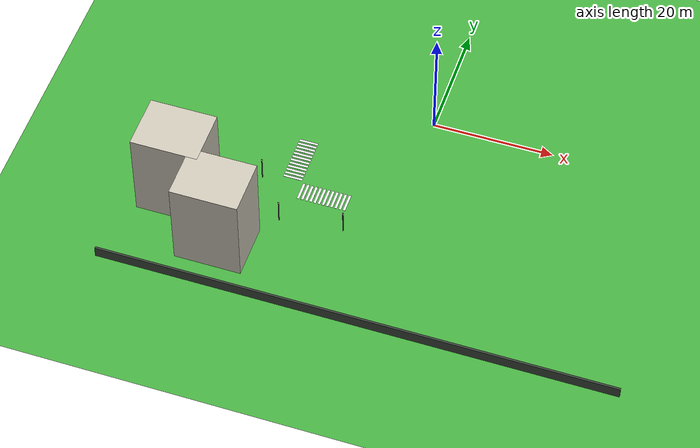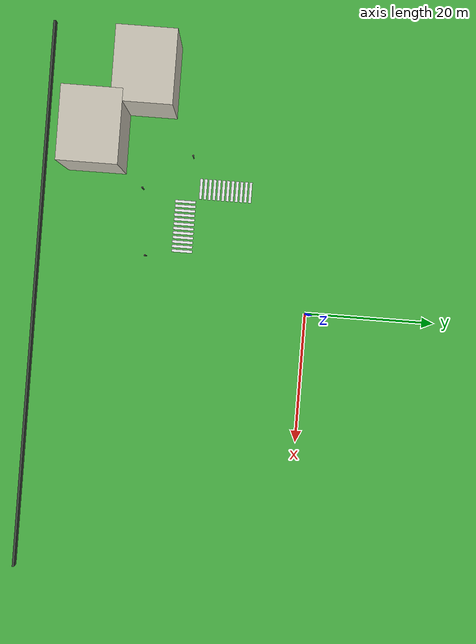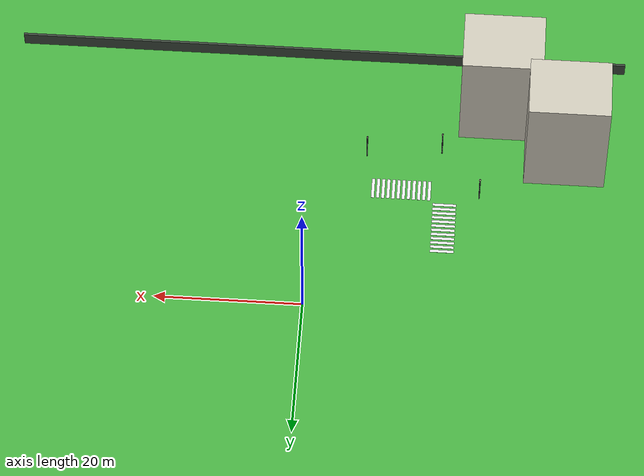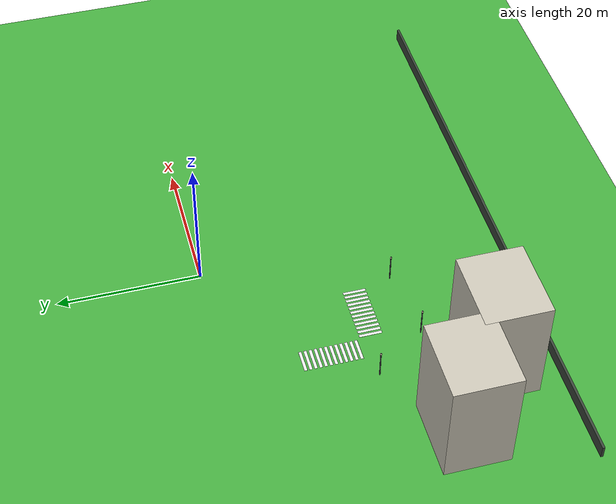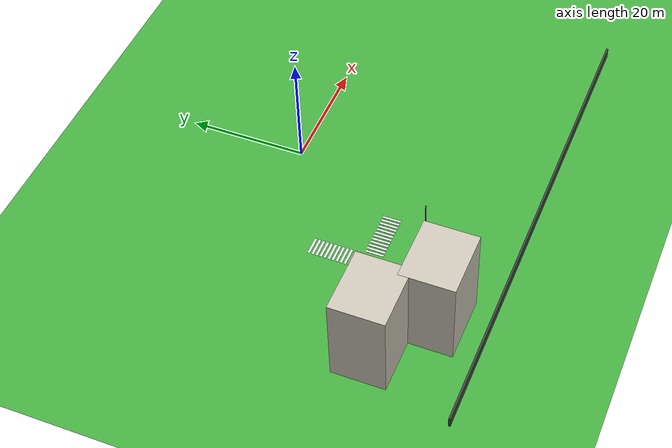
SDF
<sdf version="1.10">
 <world name="city_second">
  <model name="ground_plane">
   <static>true</static>
   <link name="link">
    <collision name="collision">
     <geometry><plane><normal>0 0 1</normal><size>300 300</size></plane></geometry>
    </collision>
    <visual name="visual">
     <geometry><plane><normal>0 0 1</normal><size>300 300</size></plane></geometry>
     <material>
      <ambient>0.280000001 0.689999998 0.25999999 1</ambient>
      <diffuse>0.280000001 0.689999998 0.25999999 1</diffuse>
      <specular>0.0299999993 0.0299999993 0.0299999993 1</specular>
     </material>
    </visual>
    <inertial>
     <mass>1</mass>
     <inertia><ixx>1</ixx><ixy>0</ixy><ixz>0</ixz><iyy>1</iyy><iyz>0</iyz><izz>1</izz></inertia>
    </inertial>
   </link>
  </model>
  <model name="fence_south">
   <static>true</static>
   <pose>0 -42 0.94999999999999996 0 0 0</pose>
   <link name="link">
    <collision name="collision">
     <geometry><box><size>84.5 0.34999999999999998 1.8999999999999999</size></box></geometry>
    </collision>
    <visual name="visual">
     <geometry><box><size>84.5 0.34999999999999998 1.8999999999999999</size></box></geometry>
     <material>
      <ambient>0.230000004 0.270000011 0.230000004 1</ambient>
      <diffuse>0.230000004 0.270000011 0.230000004 1</diffuse>
      <specular>0.0299999993 0.0299999993 0.0299999993 1</specular>
     </material>
    </visual>
    <inertial>
     <mass>1</mass>
     <inertia><ixx>1</ixx><ixy>0</ixy><ixz>0</ixz><iyy>1</iyy><iyz>0</iyz><izz>1</izz></inertia>
    </inertial>
   </link>
  </model>
  <model name="house_1_1_1">
   <static>true</static>
   <pose>-25.050025762372595 -33.839980836503813 8 0 0 0</pose>
   <link name="link">
    <collision name="collision"><geometry><box><size>11 9 16</size></box></geometry></collision>
    <visual name="visual">
     <geometry><box><size>11 9 16</size></box></geometry>
     <material>
      <ambient>0.800000012 0.779999971 0.720000029 1</ambient>
      <diffuse>0.800000012 0.779999971 0.720000029 1</diffuse>
      <specular>0.0299999993 0.0299999993 0.0299999993 1</specular>
     </material>
    </visual>
    <inertial>
     <mass>1</mass>
     <inertia><ixx>1</ixx><ixy>0</ixy><ixz>0</ixz><iyy>1</iyy><iyz>0</iyz><izz>1</izz></inertia>
    </inertial>
   </link>
  </model>
  <model name="house_1_1_2">
   <static>true</static>
   <pose>-34.208293787106776 -26.580992952310396 8 0 0 0</pose>
   <link name="link">
    <collision name="collision"><geometry><box><size>11 9 16</size></box></geometry></collision>
    <visual name="visual">
     <geometry><box><size>11 9 16</size></box></geometry>
     <material>
      <ambient>0.800000012 0.779999971 0.720000029 1</ambient>
      <diffuse>0.800000012 0.779999971 0.720000029 1</diffuse>
      <specular>0.0299999993 0.0299999993 0.0299999993 1</specular>
     </material>
    </visual>
    <inertial>
     <mass>1</mass>
     <inertia><ixx>1</ixx><ixy>0</ixy><ixz>0</ixz><iyy>1</iyy><iyz>0</iyz><izz>1</izz></inertia>
    </inertial>
   </link>
  </model>
  <model name="crosswalk_v_2_1_east_5_6">
   <static>true</static>
   <pose>-18.128123381077195 -13.730523009097814 0.017000000923871994 0 0 0</pose>
   <link name="stripe_1">
    <collision name="collision">
     <geometry><box><size>3.2000000000000002 0.41999999999999998 0.01</size></box></geometry>
    </collision>
    <visual name="visual">
     <geometry><box><size>3.2000000000000002 0.41999999999999998 0.01</size></box></geometry>
     <material>
      <ambient>0.920000017 0.920000017 0.930000007 1</ambient>
      <diffuse>0.920000017 0.920000017 0.930000007 1</diffuse>
      <specular>0.0299999993 0.0299999993 0.0299999993 1</specular>
     </material>
    </visual>
    <pose>0 -3.8500000000000001 0 0 0 0</pose>
    <inertial>
     <mass>1</mass>
     <inertia><ixx>1</ixx><ixy>0</ixy><ixz>0</ixz><iyy>1</iyy><iyz>0</iyz><izz>1</izz></inertia>
    </inertial>
   </link>
   <link name="stripe_2">
    <collision name="collision">
     <geometry><box><size>3.2000000000000002 0.41999999999999998 0.01</size></box></geometry>
    </collision>
    <visual name="visual">
     <geometry><box><size>3.2000000000000002 0.41999999999999998 0.01</size></box></geometry>
     <material>
      <ambient>0.920000017 0.920000017 0.930000007 1</ambient>
      <diffuse>0.920000017 0.920000017 0.930000007 1</diffuse>
      <specular>0.0299999993 0.0299999993 0.0299999993 1</specular>
     </material>
    </visual>
    <pose>0 -3.1500000000000004 0 0 0 0</pose>
    <inertial>
     <mass>1</mass>
     <inertia><ixx>1</ixx><ixy>0</ixy><ixz>0</ixz><iyy>1</iyy><iyz>0</iyz><izz>1</izz></inertia>
    </inertial>
   </link>
   <link name="stripe_3">
    <collision name="collision">
     <geometry><box><size>3.2000000000000002 0.41999999999999998 0.01</size></box></geometry>
    </collision>
    <visual name="visual">
     <geometry><box><size>3.2000000000000002 0.41999999999999998 0.01</size></box></geometry>
     <material>
      <ambient>0.920000017 0.920000017 0.930000007 1</ambient>
      <diffuse>0.920000017 0.920000017 0.930000007 1</diffuse>
      <specular>0.0299999993 0.0299999993 0.0299999993 1</specular>
     </material>
    </visual>
    <pose>0 -2.4499999999999975 0 0 0 0</pose>
    <inertial>
     <mass>1</mass>
     <inertia><ixx>1</ixx><ixy>0</ixy><ixz>0</ixz><iyy>1</iyy><iyz>0</iyz><izz>1</izz></inertia>
    </inertial>
   </link>
   <link name="stripe_4">
    <collision name="collision">
     <geometry><box><size>3.2000000000000002 0.41999999999999998 0.01</size></box></geometry>
    </collision>
    <visual name="visual">
     <geometry><box><size>3.2000000000000002 0.41999999999999998 0.01</size></box></geometry>
     <material>
      <ambient>0.920000017 0.920000017 0.930000007 1</ambient>
      <diffuse>0.920000017 0.920000017 0.930000007 1</diffuse>
      <specular>0.0299999993 0.0299999993 0.0299999993 1</specular>
     </material>
    </visual>
    <pose>0 -1.7499999999999982 0 0 0 0</pose>
    <inertial>
     <mass>1</mass>
     <inertia><ixx>1</ixx><ixy>0</ixy><ixz>0</ixz><iyy>1</iyy><iyz>0</iyz><izz>1</izz></inertia>
    </inertial>
   </link>
   <link name="stripe_5">
    <collision name="collision">
     <geometry><box><size>3.2000000000000002 0.41999999999999998 0.01</size></box></geometry>
    </collision>
    <visual name="visual">
     <geometry><box><size>3.2000000000000002 0.41999999999999998 0.01</size></box></geometry>
     <material>
      <ambient>0.920000017 0.920000017 0.930000007 1</ambient>
      <diffuse>0.920000017 0.920000017 0.930000007 1</diffuse>
      <specular>0.0299999993 0.0299999993 0.0299999993 1</specular>
     </material>
    </visual>
    <pose>0 -1.0499999999999989 0 0 0 0</pose>
    <inertial>
     <mass>1</mass>
     <inertia><ixx>1</ixx><ixy>0</ixy><ixz>0</ixz><iyy>1</iyy><iyz>0</iyz><izz>1</izz></inertia>
    </inertial>
   </link>
   <link name="stripe_6">
    <collision name="collision">
     <geometry><box><size>3.2000000000000002 0.41999999999999998 0.01</size></box></geometry>
    </collision>
    <visual name="visual">
     <geometry><box><size>3.2000000000000002 0.41999999999999998 0.01</size></box></geometry>
     <material>
      <ambient>0.920000017 0.920000017 0.930000007 1</ambient>
      <diffuse>0.920000017 0.920000017 0.930000007 1</diffuse>
      <specular>0.0299999993 0.0299999993 0.0299999993 1</specular>
     </material>
    </visual>
    <pose>0 -0.34999999999999787 0 0 0 0</pose>
    <inertial>
     <mass>1</mass>
     <inertia><ixx>1</ixx><ixy>0</ixy><ixz>0</ixz><iyy>1</iyy><iyz>0</iyz><izz>1</izz></inertia>
    </inertial>
   </link>
   <link name="stripe_7">
    <collision name="collision">
     <geometry><box><size>3.2000000000000002 0.41999999999999998 0.01</size></box></geometry>
    </collision>
    <visual name="visual">
     <geometry><box><size>3.2000000000000002 0.41999999999999998 0.01</size></box></geometry>
     <material>
      <ambient>0.920000017 0.920000017 0.930000007 1</ambient>
      <diffuse>0.920000017 0.920000017 0.930000007 1</diffuse>
      <specular>0.0299999993 0.0299999993 0.0299999993 1</specular>
     </material>
    </visual>
    <pose>0 0.3500000000000032 0 0 0 0</pose>
    <inertial>
     <mass>1</mass>
     <inertia><ixx>1</ixx><ixy>0</ixy><ixz>0</ixz><iyy>1</iyy><iyz>0</iyz><izz>1</izz></inertia>
    </inertial>
   </link>
   <link name="stripe_8">
    <collision name="collision">
     <geometry><box><size>3.2000000000000002 0.41999999999999998 0.01</size></box></geometry>
    </collision>
    <visual name="visual">
     <geometry><box><size>3.2000000000000002 0.41999999999999998 0.01</size></box></geometry>
     <material>
      <ambient>0.920000017 0.920000017 0.930000007 1</ambient>
      <diffuse>0.920000017 0.920000017 0.930000007 1</diffuse>
      <specular>0.0299999993 0.0299999993 0.0299999993 1</specular>
     </material>
    </visual>
    <pose>0 1.0500000000000025 0 0 0 0</pose>
    <inertial>
     <mass>1</mass>
     <inertia><ixx>1</ixx><ixy>0</ixy><ixz>0</ixz><iyy>1</iyy><iyz>0</iyz><izz>1</izz></inertia>
    </inertial>
   </link>
   <link name="stripe_9">
    <collision name="collision">
     <geometry><box><size>3.2000000000000002 0.41999999999999998 0.01</size></box></geometry>
    </collision>
    <visual name="visual">
     <geometry><box><size>3.2000000000000002 0.41999999999999998 0.01</size></box></geometry>
     <material>
      <ambient>0.920000017 0.920000017 0.930000007 1</ambient>
      <diffuse>0.920000017 0.920000017 0.930000007 1</diffuse>
      <specular>0.0299999993 0.0299999993 0.0299999993 1</specular>
     </material>
    </visual>
    <pose>0 1.7500000000000018 0 0 0 0</pose>
    <inertial>
     <mass>1</mass>
     <inertia><ixx>1</ixx><ixy>0</ixy><ixz>0</ixz><iyy>1</iyy><iyz>0</iyz><izz>1</izz></inertia>
    </inertial>
   </link>
   <link name="stripe_10">
    <collision name="collision">
     <geometry><box><size>3.2000000000000002 0.41999999999999998 0.01</size></box></geometry>
    </collision>
    <visual name="visual">
     <geometry><box><size>3.2000000000000002 0.41999999999999998 0.01</size></box></geometry>
     <material>
      <ambient>0.920000017 0.920000017 0.930000007 1</ambient>
      <diffuse>0.920000017 0.920000017 0.930000007 1</diffuse>
      <specular>0.0299999993 0.0299999993 0.0299999993 1</specular>
     </material>
    </visual>
    <pose>0 2.4500000000000011 0 0 0 0</pose>
    <inertial>
     <mass>1</mass>
     <inertia><ixx>1</ixx><ixy>0</ixy><ixz>0</ixz><iyy>1</iyy><iyz>0</iyz><izz>1</izz></inertia>
    </inertial>
   </link>
   <link name="stripe_11">
    <collision name="collision">
     <geometry><box><size>3.2000000000000002 0.41999999999999998 0.01</size></box></geometry>
    </collision>
    <visual name="visual">
     <geometry><box><size>3.2000000000000002 0.41999999999999998 0.01</size></box></geometry>
     <material>
      <ambient>0.920000017 0.920000017 0.930000007 1</ambient>
      <diffuse>0.920000017 0.920000017 0.930000007 1</diffuse>
      <specular>0.0299999993 0.0299999993 0.0299999993 1</specular>
     </material>
    </visual>
    <pose>0 3.1500000000000004 0 0 0 0</pose>
    <inertial>
     <mass>1</mass>
     <inertia><ixx>1</ixx><ixy>0</ixy><ixz>0</ixz><iyy>1</iyy><iyz>0</iyz><izz>1</izz></inertia>
    </inertial>
   </link>
   <link name="stripe_12">
    <collision name="collision">
     <geometry><box><size>3.2000000000000002 0.41999999999999998 0.01</size></box></geometry>
    </collision>
    <visual name="visual">
     <geometry><box><size>3.2000000000000002 0.41999999999999998 0.01</size></box></geometry>
     <material>
      <ambient>0.920000017 0.920000017 0.930000007 1</ambient>
      <diffuse>0.920000017 0.920000017 0.930000007 1</diffuse>
      <specular>0.0299999993 0.0299999993 0.0299999993 1</specular>
     </material>
    </visual>
    <pose>0 3.8500000000000032 0 0 0 0</pose>
    <inertial>
     <mass>1</mass>
     <inertia><ixx>1</ixx><ixy>0</ixy><ixz>0</ixz><iyy>1</iyy><iyz>0</iyz><izz>1</izz></inertia>
    </inertial>
   </link>
  </model>
  <model name="crosswalk_h_1_1_south_7_3">
   <static>true</static>
   <pose>-12.11891220755183 -19.828678379295386 0.017000000923871994 0 0 0</pose>
   <link name="stripe_1">
    <collision name="collision">
     <geometry><box><size>0.41999999999999998 3.2000000000000002 0.01</size></box></geometry>
    </collision>
    <visual name="visual">
     <geometry><box><size>0.41999999999999998 3.2000000000000002 0.01</size></box></geometry>
     <material>
      <ambient>0.920000017 0.920000017 0.930000007 1</ambient>
      <diffuse>0.920000017 0.920000017 0.930000007 1</diffuse>
      <specular>0.0299999993 0.0299999993 0.0299999993 1</specular>
     </material>
    </visual>
    <pose>-3.8500000000000001 0 0 0 0 0</pose>
    <inertial>
     <mass>1</mass>
     <inertia><ixx>1</ixx><ixy>0</ixy><ixz>0</ixz><iyy>1</iyy><iyz>0</iyz><izz>1</izz></inertia>
    </inertial>
   </link>
   <link name="stripe_2">
    <collision name="collision">
     <geometry><box><size>0.41999999999999998 3.2000000000000002 0.01</size></box></geometry>
    </collision>
    <visual name="visual">
     <geometry><box><size>0.41999999999999998 3.2000000000000002 0.01</size></box></geometry>
     <material>
      <ambient>0.920000017 0.920000017 0.930000007 1</ambient>
      <diffuse>0.920000017 0.920000017 0.930000007 1</diffuse>
      <specular>0.0299999993 0.0299999993 0.0299999993 1</specular>
     </material>
    </visual>
    <pose>-3.1500000000000004 0 0 0 0 0</pose>
    <inertial>
     <mass>1</mass>
     <inertia><ixx>1</ixx><ixy>0</ixy><ixz>0</ixz><iyy>1</iyy><iyz>0</iyz><izz>1</izz></inertia>
    </inertial>
   </link>
   <link name="stripe_3">
    <collision name="collision">
     <geometry><box><size>0.41999999999999998 3.2000000000000002 0.01</size></box></geometry>
    </collision>
    <visual name="visual">
     <geometry><box><size>0.41999999999999998 3.2000000000000002 0.01</size></box></geometry>
     <material>
      <ambient>0.920000017 0.920000017 0.930000007 1</ambient>
      <diffuse>0.920000017 0.920000017 0.930000007 1</diffuse>
      <specular>0.0299999993 0.0299999993 0.0299999993 1</specular>
     </material>
    </visual>
    <pose>-2.4499999999999993 0 0 0 0 0</pose>
    <inertial>
     <mass>1</mass>
     <inertia><ixx>1</ixx><ixy>0</ixy><ixz>0</ixz><iyy>1</iyy><iyz>0</iyz><izz>1</izz></inertia>
    </inertial>
   </link>
   <link name="stripe_4">
    <collision name="collision">
     <geometry><box><size>0.41999999999999998 3.2000000000000002 0.01</size></box></geometry>
    </collision>
    <visual name="visual">
     <geometry><box><size>0.41999999999999998 3.2000000000000002 0.01</size></box></geometry>
     <material>
      <ambient>0.920000017 0.920000017 0.930000007 1</ambient>
      <diffuse>0.920000017 0.920000017 0.930000007 1</diffuse>
      <specular>0.0299999993 0.0299999993 0.0299999993 1</specular>
     </material>
    </visual>
    <pose>-1.75 0 0 0 0 0</pose>
    <inertial>
     <mass>1</mass>
     <inertia><ixx>1</ixx><ixy>0</ixy><ixz>0</ixz><iyy>1</iyy><iyz>0</iyz><izz>1</izz></inertia>
    </inertial>
   </link>
   <link name="stripe_5">
    <collision name="collision">
     <geometry><box><size>0.41999999999999998 3.2000000000000002 0.01</size></box></geometry>
    </collision>
    <visual name="visual">
     <geometry><box><size>0.41999999999999998 3.2000000000000002 0.01</size></box></geometry>
     <material>
      <ambient>0.920000017 0.920000017 0.930000007 1</ambient>
      <diffuse>0.920000017 0.920000017 0.930000007 1</diffuse>
      <specular>0.0299999993 0.0299999993 0.0299999993 1</specular>
     </material>
    </visual>
    <pose>-1.0500000000000007 0 0 0 0 0</pose>
    <inertial>
     <mass>1</mass>
     <inertia><ixx>1</ixx><ixy>0</ixy><ixz>0</ixz><iyy>1</iyy><iyz>0</iyz><izz>1</izz></inertia>
    </inertial>
   </link>
   <link name="stripe_6">
    <collision name="collision">
     <geometry><box><size>0.41999999999999998 3.2000000000000002 0.01</size></box></geometry>
    </collision>
    <visual name="visual">
     <geometry><box><size>0.41999999999999998 3.2000000000000002 0.01</size></box></geometry>
     <material>
      <ambient>0.920000017 0.920000017 0.930000007 1</ambient>
      <diffuse>0.920000017 0.920000017 0.930000007 1</diffuse>
      <specular>0.0299999993 0.0299999993 0.0299999993 1</specular>
     </material>
    </visual>
    <pose>-0.34999999999999964 0 0 0 0 0</pose>
    <inertial>
     <mass>1</mass>
     <inertia><ixx>1</ixx><ixy>0</ixy><ixz>0</ixz><iyy>1</iyy><iyz>0</iyz><izz>1</izz></inertia>
    </inertial>
   </link>
   <link name="stripe_7">
    <collision name="collision">
     <geometry><box><size>0.41999999999999998 3.2000000000000002 0.01</size></box></geometry>
    </collision>
    <visual name="visual">
     <geometry><box><size>0.41999999999999998 3.2000000000000002 0.01</size></box></geometry>
     <material>
      <ambient>0.920000017 0.920000017 0.930000007 1</ambient>
      <diffuse>0.920000017 0.920000017 0.930000007 1</diffuse>
      <specular>0.0299999993 0.0299999993 0.0299999993 1</specular>
     </material>
    </visual>
    <pose>0.35000000000000142 0 0 0 0 0</pose>
    <inertial>
     <mass>1</mass>
     <inertia><ixx>1</ixx><ixy>0</ixy><ixz>0</ixz><iyy>1</iyy><iyz>0</iyz><izz>1</izz></inertia>
    </inertial>
   </link>
   <link name="stripe_8">
    <collision name="collision">
     <geometry><box><size>0.41999999999999998 3.2000000000000002 0.01</size></box></geometry>
    </collision>
    <visual name="visual">
     <geometry><box><size>0.41999999999999998 3.2000000000000002 0.01</size></box></geometry>
     <material>
      <ambient>0.920000017 0.920000017 0.930000007 1</ambient>
      <diffuse>0.920000017 0.920000017 0.930000007 1</diffuse>
      <specular>0.0299999993 0.0299999993 0.0299999993 1</specular>
     </material>
    </visual>
    <pose>1.0500000000000007 0 0 0 0 0</pose>
    <inertial>
     <mass>1</mass>
     <inertia><ixx>1</ixx><ixy>0</ixy><ixz>0</ixz><iyy>1</iyy><iyz>0</iyz><izz>1</izz></inertia>
    </inertial>
   </link>
   <link name="stripe_9">
    <collision name="collision">
     <geometry><box><size>0.41999999999999998 3.2000000000000002 0.01</size></box></geometry>
    </collision>
    <visual name="visual">
     <geometry><box><size>0.41999999999999998 3.2000000000000002 0.01</size></box></geometry>
     <material>
      <ambient>0.920000017 0.920000017 0.930000007 1</ambient>
      <diffuse>0.920000017 0.920000017 0.930000007 1</diffuse>
      <specular>0.0299999993 0.0299999993 0.0299999993 1</specular>
     </material>
    </visual>
    <pose>1.75 0 0 0 0 0</pose>
    <inertial>
     <mass>1</mass>
     <inertia><ixx>1</ixx><ixy>0</ixy><ixz>0</ixz><iyy>1</iyy><iyz>0</iyz><izz>1</izz></inertia>
    </inertial>
   </link>
   <link name="stripe_10">
    <collision name="collision">
     <geometry><box><size>0.41999999999999998 3.2000000000000002 0.01</size></box></geometry>
    </collision>
    <visual name="visual">
     <geometry><box><size>0.41999999999999998 3.2000000000000002 0.01</size></box></geometry>
     <material>
      <ambient>0.920000017 0.920000017 0.930000007 1</ambient>
      <diffuse>0.920000017 0.920000017 0.930000007 1</diffuse>
      <specular>0.0299999993 0.0299999993 0.0299999993 1</specular>
     </material>
    </visual>
    <pose>2.4499999999999993 0 0 0 0 0</pose>
    <inertial>
     <mass>1</mass>
     <inertia><ixx>1</ixx><ixy>0</ixy><ixz>0</ixz><iyy>1</iyy><iyz>0</iyz><izz>1</izz></inertia>
    </inertial>
   </link>
   <link name="stripe_11">
    <collision name="collision">
     <geometry><box><size>0.41999999999999998 3.2000000000000002 0.01</size></box></geometry>
    </collision>
    <visual name="visual">
     <geometry><box><size>0.41999999999999998 3.2000000000000002 0.01</size></box></geometry>
     <material>
      <ambient>0.920000017 0.920000017 0.930000007 1</ambient>
      <diffuse>0.920000017 0.920000017 0.930000007 1</diffuse>
      <specular>0.0299999993 0.0299999993 0.0299999993 1</specular>
     </material>
    </visual>
    <pose>3.1499999999999986 0 0 0 0 0</pose>
    <inertial>
     <mass>1</mass>
     <inertia><ixx>1</ixx><ixy>0</ixy><ixz>0</ixz><iyy>1</iyy><iyz>0</iyz><izz>1</izz></inertia>
    </inertial>
   </link>
   <link name="stripe_12">
    <collision name="collision">
     <geometry><box><size>0.41999999999999998 3.2000000000000002 0.01</size></box></geometry>
    </collision>
    <visual name="visual">
     <geometry><box><size>0.41999999999999998 3.2000000000000002 0.01</size></box></geometry>
     <material>
      <ambient>0.920000017 0.920000017 0.930000007 1</ambient>
      <diffuse>0.920000017 0.920000017 0.930000007 1</diffuse>
      <specular>0.0299999993 0.0299999993 0.0299999993 1</specular>
     </material>
    </visual>
    <pose>3.8500000000000014 0 0 0 0 0</pose>
    <inertial>
     <mass>1</mass>
     <inertia><ixx>1</ixx><ixy>0</ixy><ixz>0</ixz><iyy>1</iyy><iyz>0</iyz><izz>1</izz></inertia>
    </inertial>
   </link>
  </model>
  <model name="lamp_1_2_2">
   <static>true</static>
   <pose>-22.794591913754225 -19.034476170166059 2.2000000476837158 0 0 0</pose>
   <link name="link">
    <collision name="collision">
     <geometry>
      <cylinder><radius>0.080000000000000002</radius><length>4.4000000000000004</length></cylinder>
     </geometry>
    </collision>
    <visual name="pole">
     <geometry>
      <cylinder><radius>0.080000000000000002</radius><length>4.4000000000000004</length></cylinder>
     </geometry>
     <material>
      <ambient>0.349999994 0.360000014 0.379999995 1</ambient>
      <diffuse>0.349999994 0.360000014 0.379999995 1</diffuse>
      <specular>0.0299999993 0.0299999993 0.0299999993 1</specular>
     </material>
    </visual>
    <visual name="lamp_head">
     <pose>0 0 2 0 0 0</pose>
     <geometry><sphere><radius>0.14000000000000001</radius></sphere></geometry>
     <material>
      <ambient>0.959999979 0.939999998 0.779999971 1</ambient>
      <diffuse>0.959999979 0.939999998 0.779999971 1</diffuse>
      <specular>0.0299999993 0.0299999993 0.0299999993 1</specular>
     </material>
    </visual>
    <inertial>
     <mass>1</mass>
     <inertia><ixx>1</ixx><ixy>0</ixy><ixz>0</ixz><iyy>1</iyy><iyz>0</iyz><izz>1</izz></inertia>
    </inertial>
   </link>
  </model>
  <model name="lamp_1_2_3">
   <static>true</static>
   <pose>-17.391663645442886 -26.418319430144631 2.2000000476837158 0 0 0</pose>
   <link name="link">
    <collision name="collision">
     <geometry>
      <cylinder><radius>0.080000000000000002</radius><length>4.4000000000000004</length></cylinder>
     </geometry>
    </collision>
    <visual name="pole">
     <geometry>
      <cylinder><radius>0.080000000000000002</radius><length>4.4000000000000004</length></cylinder>
     </geometry>
     <material>
      <ambient>0.349999994 0.360000014 0.379999995 1</ambient>
      <diffuse>0.349999994 0.360000014 0.379999995 1</diffuse>
      <specular>0.0299999993 0.0299999993 0.0299999993 1</specular>
     </material>
    </visual>
    <visual name="lamp_head">
     <pose>0 0 2 0 0 0</pose>
     <geometry><sphere><radius>0.14000000000000001</radius></sphere></geometry>
     <material>
      <ambient>0.959999979 0.939999998 0.779999971 1</ambient>
      <diffuse>0.959999979 0.939999998 0.779999971 1</diffuse>
      <specular>0.0299999993 0.0299999993 0.0299999993 1</specular>
     </material>
    </visual>
    <inertial>
     <mass>1</mass>
     <inertia><ixx>1</ixx><ixy>0</ixy><ixz>0</ixz><iyy>1</iyy><iyz>0</iyz><izz>1</izz></inertia>
    </inertial>
   </link>
  </model>
  <model name="lamp_1_2_4">
   <static>true</static>
   <pose>-7.124780281909473 -25.261553669810567 2.2000000476837158 0 0 0</pose>
   <link name="link">
    <collision name="collision">
     <geometry>
      <cylinder><radius>0.080000000000000002</radius><length>4.4000000000000004</length></cylinder>
     </geometry>
    </collision>
    <visual name="pole">
     <geometry>
      <cylinder><radius>0.080000000000000002</radius><length>4.4000000000000004</length></cylinder>
     </geometry>
     <material>
      <ambient>0.349999994 0.360000014 0.379999995 1</ambient>
      <diffuse>0.349999994 0.360000014 0.379999995 1</diffuse>
      <specular>0.0299999993 0.0299999993 0.0299999993 1</specular>
     </material>
    </visual>
    <visual name="lamp_head">
     <pose>0 0 2 0 0 0</pose>
     <geometry><sphere><radius>0.14000000000000001</radius></sphere></geometry>
     <material>
      <ambient>0.959999979 0.939999998 0.779999971 1</ambient>
      <diffuse>0.959999979 0.939999998 0.779999971 1</diffuse>
      <specular>0.0299999993 0.0299999993 0.0299999993 1</specular>
     </material>
    </visual>
    <inertial>
     <mass>1</mass>
     <inertia><ixx>1</ixx><ixy>0</ixy><ixz>0</ixz><iyy>1</iyy><iyz>0</iyz><izz>1</izz></inertia>
    </inertial>
   </link>
  </model>
 </world>
</sdf>
